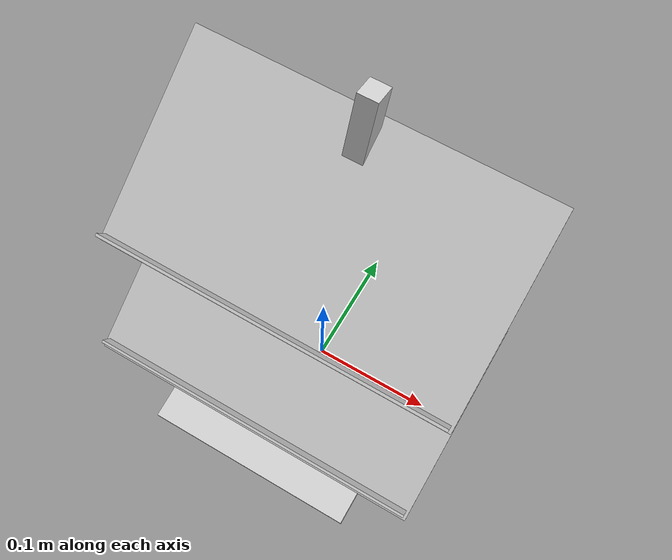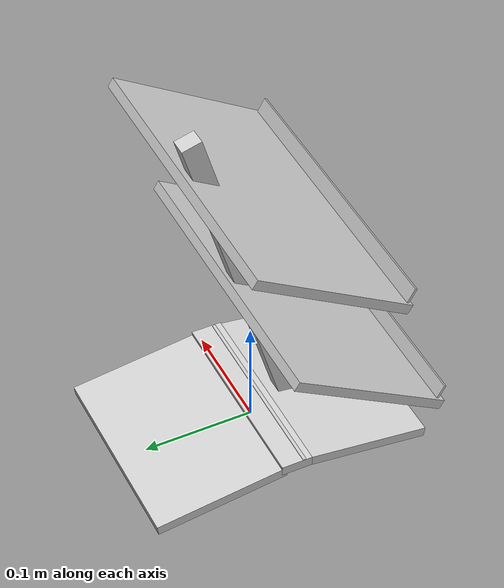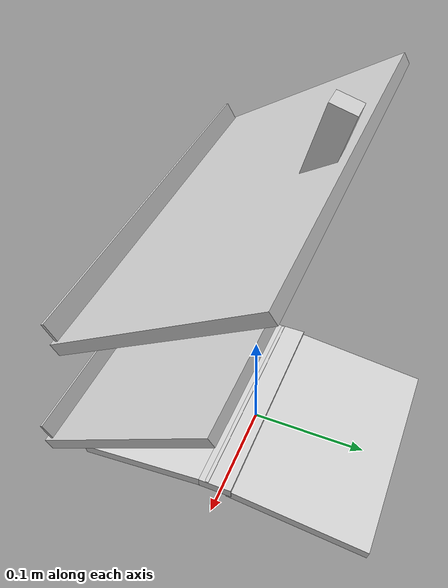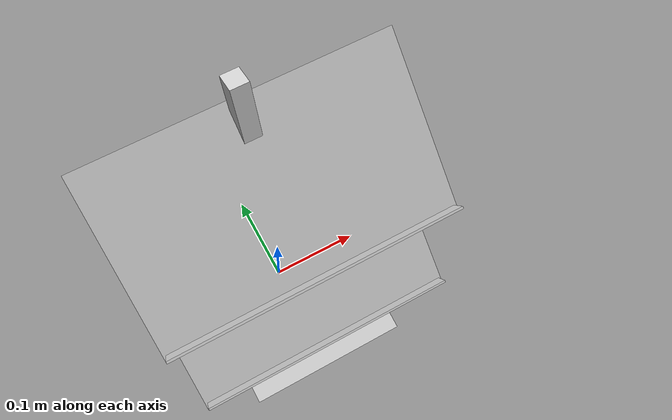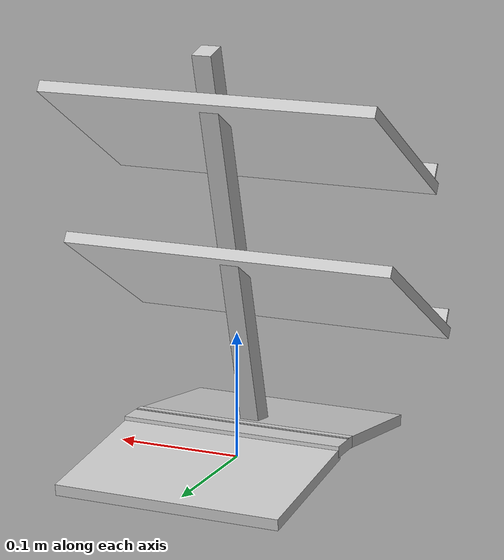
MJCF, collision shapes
<mujoco model="wine_rack_stand">
  <compiler angle="radian" inertiagrouprange="0 0" autolimits="true" />
  <asset>
    <texture file="../assets/turbosquid_objects/wine_rack/mahogany.png" name="tex-wine_rack_stand" type="2d" />
    <material name="wine_rack_stand" reflectance="0.5" texrepeat="1 1" texture="tex-wine_rack_stand" texuniform="false" />
    <mesh file="../assets/turbosquid_objects/wine_rack/visual/wine_rack_stand_vis.msh" name="wine_rack_stand_vis" scale="0.0045 0.0045 0.0045" />
    <texture file="../assets/turbosquid_objects/wine_rack/light-wood.png" name="tex-wine_rack_planes" type="2d" />
    <material name="wine_rack_planes" reflectance="0.5" texrepeat="1 1" texture="tex-wine_rack_planes" texuniform="false" />
    <mesh file="../assets/turbosquid_objects/wine_rack/visual/wine_rack_planes_vis.msh" name="wine_rack_planes_vis" scale="0.0045 0.0045 0.0045" />
    <material name="wine_rack_stoppers" reflectance="0.5" texrepeat="1 1" rgba="0 0.345 0.545 0.1" texuniform="false" />
    <mesh file="../assets/turbosquid_objects/wine_rack/visual/wine_rack_stoppers_vis.msh" name="wine_rack_stoppers_vis" scale="0.0045 0.0045 0.0045" />
  </asset>
  <worldbody>
    <body name="object">
      <site type="box" pos="0 -0.08003 0.21745" quat="0.8549119 -0.5187733 0 0" size="0.10087 0.02200 0.00251" group="0" rgba="0.8 0.8 0.8 0" name="top_region" />
      <geom solimp="0.998 0.998 0.001" solref="0.001 1" density="100" friction="0.95 0.3 0.1" type="mesh" mesh="wine_rack_planes_vis" conaffinity="0" contype="0" group="1" material="wine_rack_planes" />
      <geom solimp="0.998 0.998 0.001" solref="0.001 1" density="100" friction="0.95 0.3 0.1" type="box" pos="-0.00000 -0.00610 0.25118" quat="0.68093 0.19061 0.68093 0.19061" size="0.00450 0.07894 0.13438" group="0" rgba="0.8 0.8 0.8 0.3" />
      <geom solimp="0.998 0.998 0.001" solref="0.001 1" density="100" friction="0.95 0.3 0.1" type="box" pos="0.00000 -0.04273 0.12727" quat="0.68093 0.19061 -0.68093 -0.19061" size="0.00450 0.07894 0.13438" group="0" rgba="0.8 0.8 0.8 0.3" />
      <geom solimp="0.998 0.998 0.001" solref="0.001 1" density="100" friction="0.95 0.3 0.1" type="mesh" mesh="wine_rack_stoppers_vis" conaffinity="0" contype="0" group="1" material="wine_rack_stoppers" />
      <geom solimp="0.998 0.998 0.001" solref="0.001 1" density="100" friction="0.95 0.3 0.1" type="box" pos="0.00000 -0.07477 0.22072" quat="0.61020 -0.35728 -0.61020 0.35728" size="0.00108 0.00867 0.13222" group="0" rgba="0.8 0.8 0.8 0.3" />
      <geom solimp="0.998 0.998 0.001" solref="0.001 1" density="100" friction="0.95 0.3 0.1" type="box" pos="-0.00000 -0.10912 0.09735" quat="0.35728 0.61020 -0.35728 -0.61020" size="0.00108 0.00867 0.13222" group="0" rgba="0.8 0.8 0.8 0.3" />
      <geom solimp="0.998 0.998 0.001" solref="0.001 1" density="100" friction="0.95 0.3 0.1" type="mesh" mesh="wine_rack_stand_vis" conaffinity="0" contype="0" group="1" material="wine_rack_stand" />
      <geom solimp="0.998 0.998 0.001" solref="0.001 1" density="100" friction="0.95 0.3 0.1" type="box" pos="-0.00000 0.00000 0.00657" quat="0.50000 -0.50000 0.50000 0.50000" size="0.00450 0.06646 0.09302" group="0" rgba="0.8 0.8 0.8 0.3" />
      <geom solimp="0.998 0.998 0.001" solref="0.001 1" density="100" friction="0.95 0.3 0.1" type="box" pos="-0.00000 0.06935 0.01006" quat="0.70560 -0.04613 -0.70560 0.04613" size="0.00447 0.06004 0.08995" group="0" rgba="0.8 0.8 0.8 0.3" />
      <geom solimp="0.998 0.998 0.001" solref="0.001 1" density="100" friction="0.95 0.3 0.1" type="box" pos="-0.00000 -0.06430 0.01263" quat="0.04959 -0.70537 -0.04959 0.70537" size="0.00447 0.06004 0.08995" group="0" rgba="0.8 0.8 0.8 0.3" />
      <geom solimp="0.998 0.998 0.001" solref="0.001 1" density="100" friction="0.95 0.3 0.1" type="box" pos="0.00000 0.00000 0.02050" quat="0.70711 0.00000 0.70711 0.00000" size="0.00450 0.01410 0.09045" group="0" rgba="0.8 0.8 0.8 0.3" />
      <geom solimp="0.998 0.998 0.001" solref="0.001 1" density="100" friction="0.95 0.3 0.1" type="box" pos="-0.00000 0.00886 0.17026" quat="0.00000 0.00000 -0.13781 -0.99046" size="0.00762 0.00905 0.16165" group="0" rgba="0.8 0.8 0.8 0.3" />
      <joint type="free" damping="0.0005" name="joint0" />
    </body>
  </worldbody>
</mujoco>
